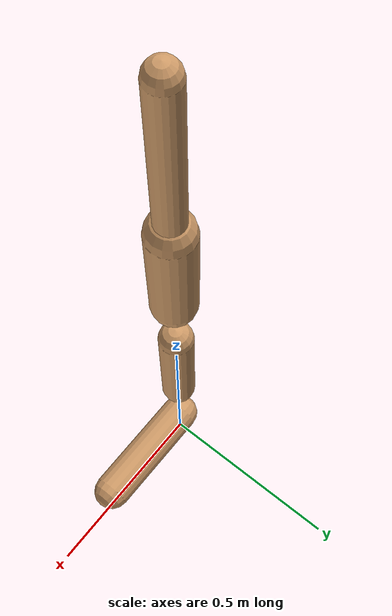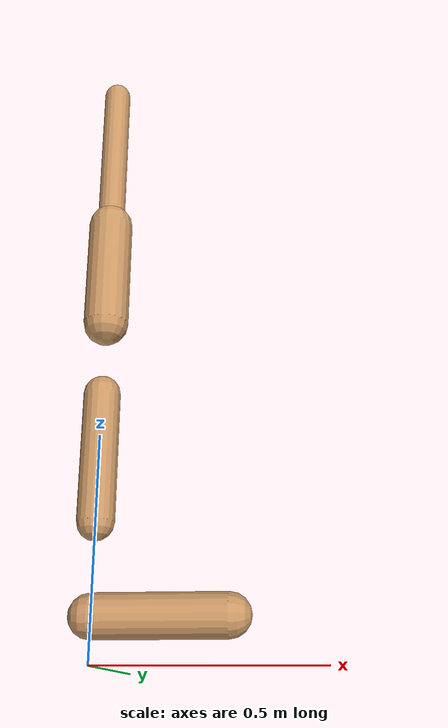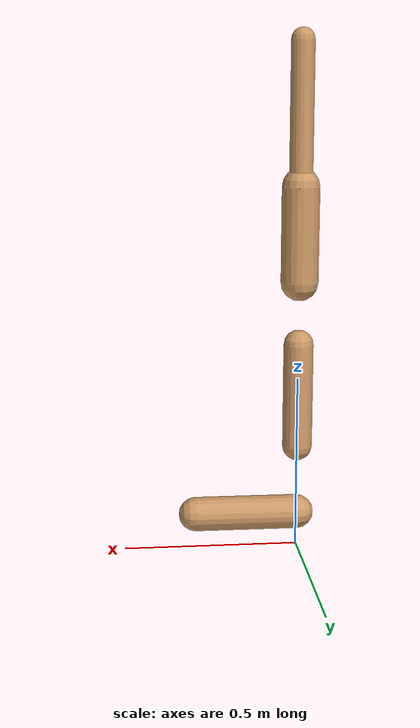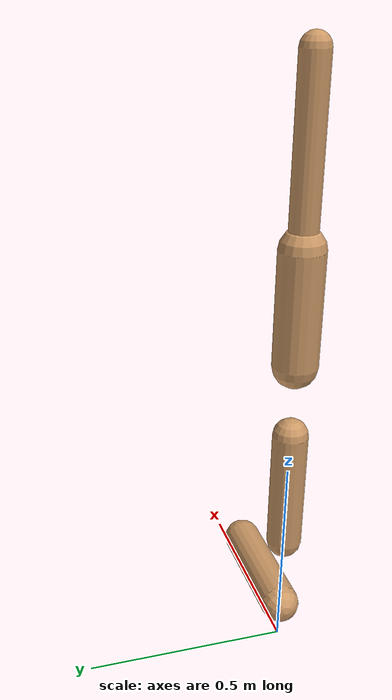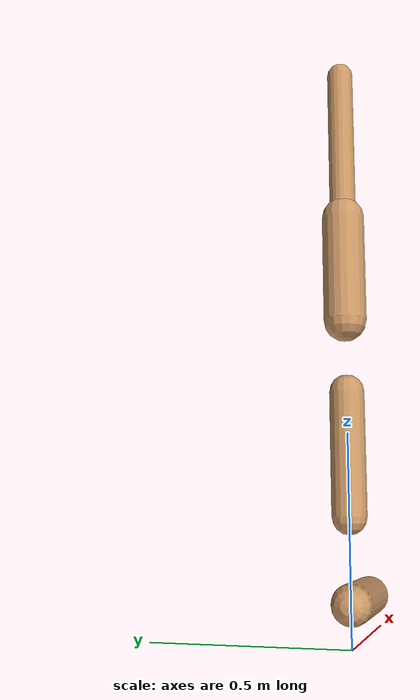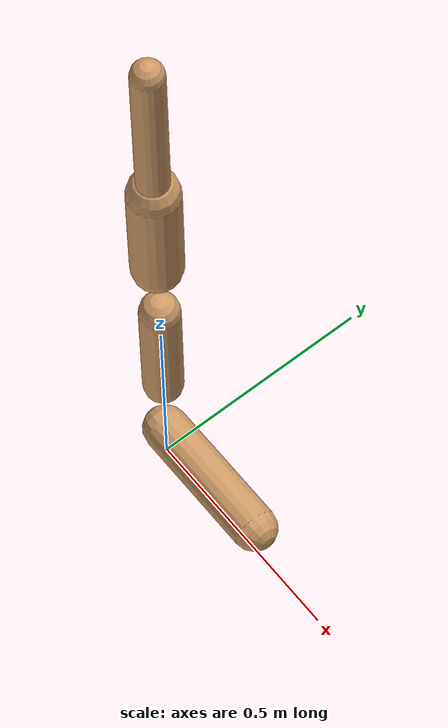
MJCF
<mujoco model="walker2d">
  <compiler angle="degree" coordinate="global" inertiafromgeom="true" />
  <default>
    <joint armature="0.01" damping=".1" limited="true" />
    <geom conaffinity="0" condim="3" contype="1" density="1000" friction="0.8 .1 .1" rgba="0.8 0.6 .4 1" />
  </default>
  <option integrator="RK4" timestep="0.002" />
  <worldbody>

    <body name="torso" pos="0 0 -0.3820053079143303">
      <joint armature="0" axis="1 0 0" damping="0" limited="false" name="ignorex" pos="0 0 0" stiffness="0" type="slide" />
      <joint armature="0" axis="0 0 1" damping="0" limited="false" name="ignorez" pos="0 0 0" ref="1.25" stiffness="0" type="slide" />
      <joint armature="0" axis="0 1 0" damping="0" limited="false" name="ignorey" pos="0 0 0" stiffness="0" type="hinge" />
      <geom fromto="0 0 1.45 0 0 1.05" name="torso_geom" size="0.033109961813376235" type="capsule" />
      <body name="thigh">
        <joint axis="0 -1 0" name="thigh_joint" pos="0 0 1.05" range="-150 0" type="hinge" />
        <geom fromto="0.0 0.0 1.05 0.0 0.0 0.7809498826962618" name="thigh_geom" size="0.05331347307580123" type="capsule" />
        <body name="leg" pos="0.0 0.0 0.18094988269626178">
          <joint axis="0 -1 0" name="leg_joint" pos="0 0 0.6" range="-150 0" type="hinge" />
          <geom fromto="0.0 0.0 0.6 0.0 0.0 0.3010554252180686" name="leg_geom" size="0.042650778460640984" type="capsule" />
          <body name="foot" pos="0.0 0.0 0.2010554252180686">
            <joint axis="0 -1 0" name="foot_joint" pos="0 0 0.1" range="-45 45" type="hinge" />
            <geom fromto="-0.0 0.0 0.1 0.2940306157027196 0.0 0.1" name="foot_geom" size="0.04896836902528699" type="capsule" />
          </body>
        </body>
      </body>

      <body name="thigh_left">
        <joint axis="0 -1 0" name="thigh_left_joint" pos="0 0 1.05" range="-150 0" type="hinge" />
        <geom fromto="0.0 0.0 1.05 0.0 0.0 0.7809498826962618" name="thigh_left_geom" rgba=".7 .3 .6 1" size="0.05331347307580123" type="capsule" />
        <body name="leg_left" pos="0.0 0.0 0.18094988269626178">
          <joint axis="0 -1 0" name="leg_left_joint" pos="0 0 0.6" range="-150 0" type="hinge" />
          <geom fromto="0.0 0.0 0.6 0.0 0.0 0.3010554252180686" name="leg_left_geom" rgba=".7 .3 .6 1" size="0.042650778460640984" type="capsule" />
          <body name="foot_left" pos="0.0 0.0 0.2010554252180686">
            <joint axis="0 -1 0" name="foot_left_joint" pos="0 0 0.1" range="-45 45" type="hinge" />
            <geom fromto="-0.0 0.0 0.1 0.2940306157027196 0.0 0.1" name="foot_left_geom" rgba=".7 .3 .6 1" size="0.04896836902528699" type="capsule" />
          </body>
        </body>
      </body>
    </body>
  </worldbody>
  <actuator>

    <motor ctrllimited="true" ctrlrange="-1.0 1.0" gear="100" joint="thigh_joint" />
    <motor ctrllimited="true" ctrlrange="-1.0 1.0" gear="100" joint="leg_joint" />
    <motor ctrllimited="true" ctrlrange="-1.0 1.0" gear="100" joint="foot_joint" />
    <motor ctrllimited="true" ctrlrange="-1.0 1.0" gear="100" joint="thigh_left_joint" />
    <motor ctrllimited="true" ctrlrange="-1.0 1.0" gear="100" joint="leg_left_joint" />
    <motor ctrllimited="true" ctrlrange="-1.0 1.0" gear="100" joint="foot_left_joint" />

  </actuator>
</mujoco>
